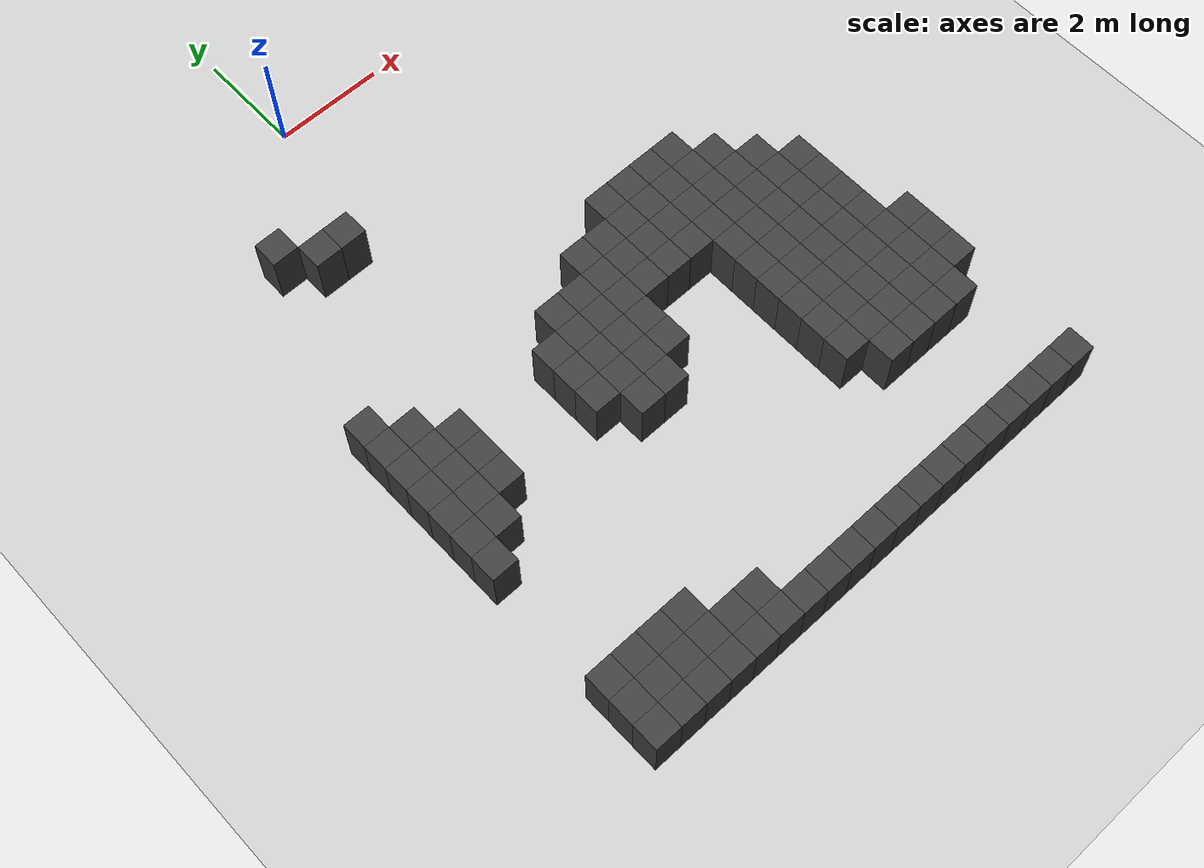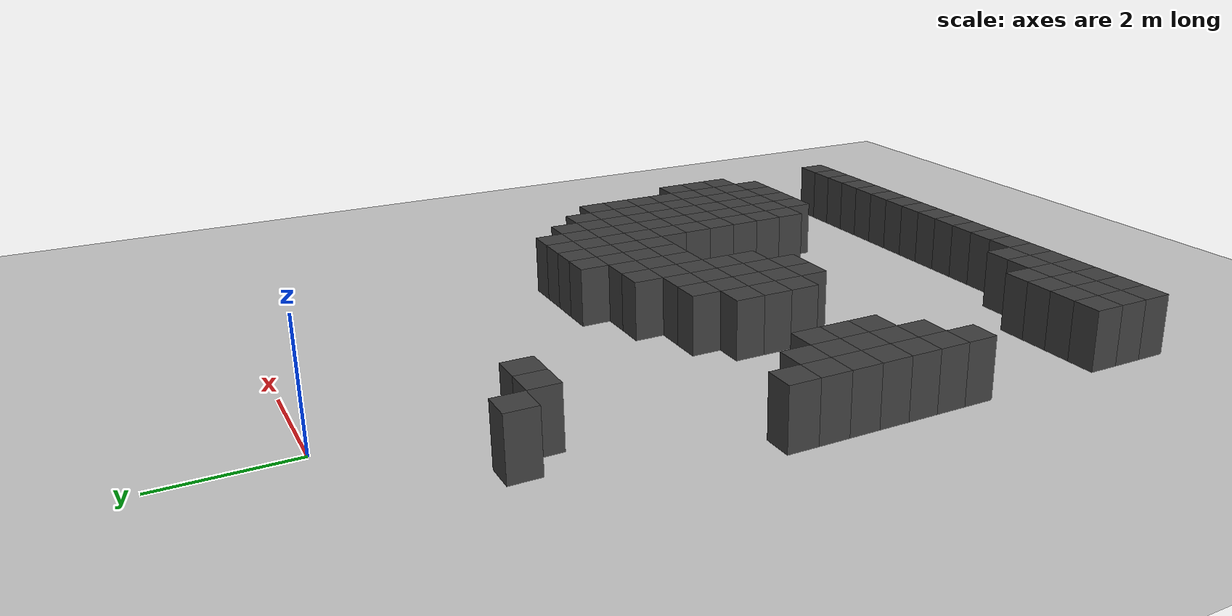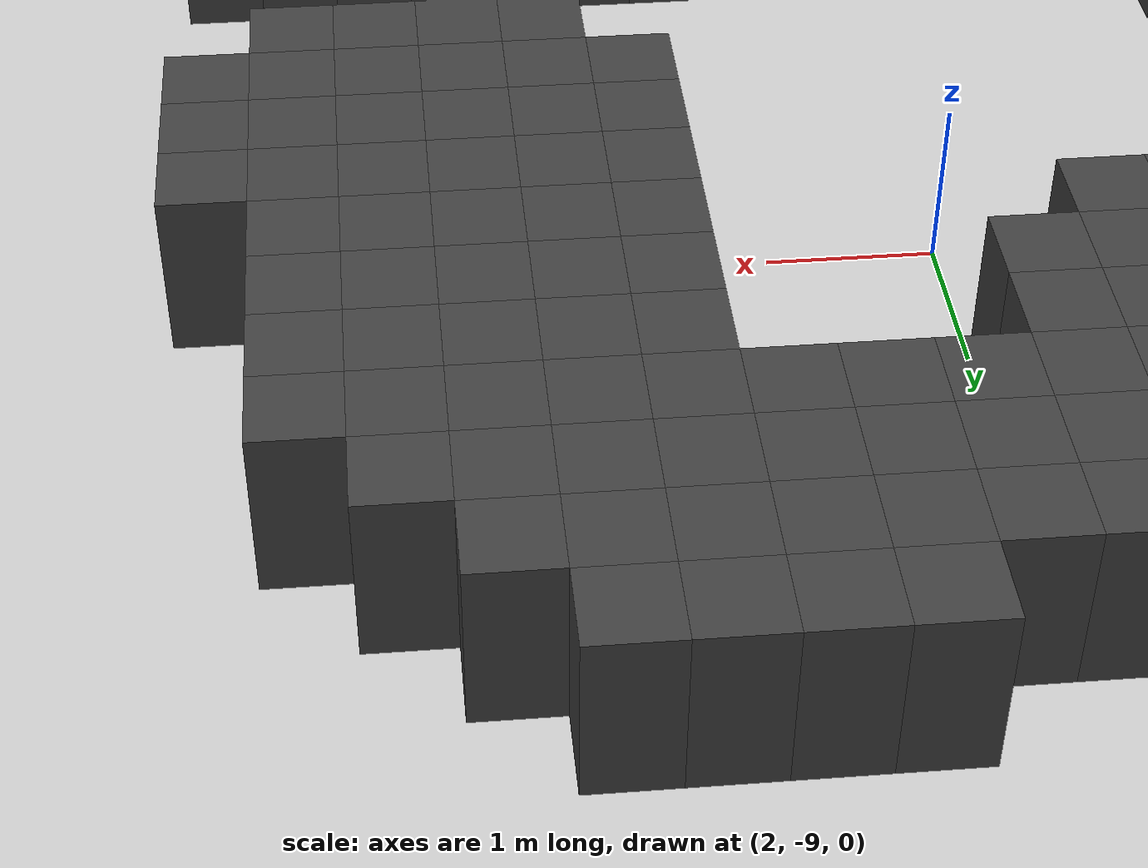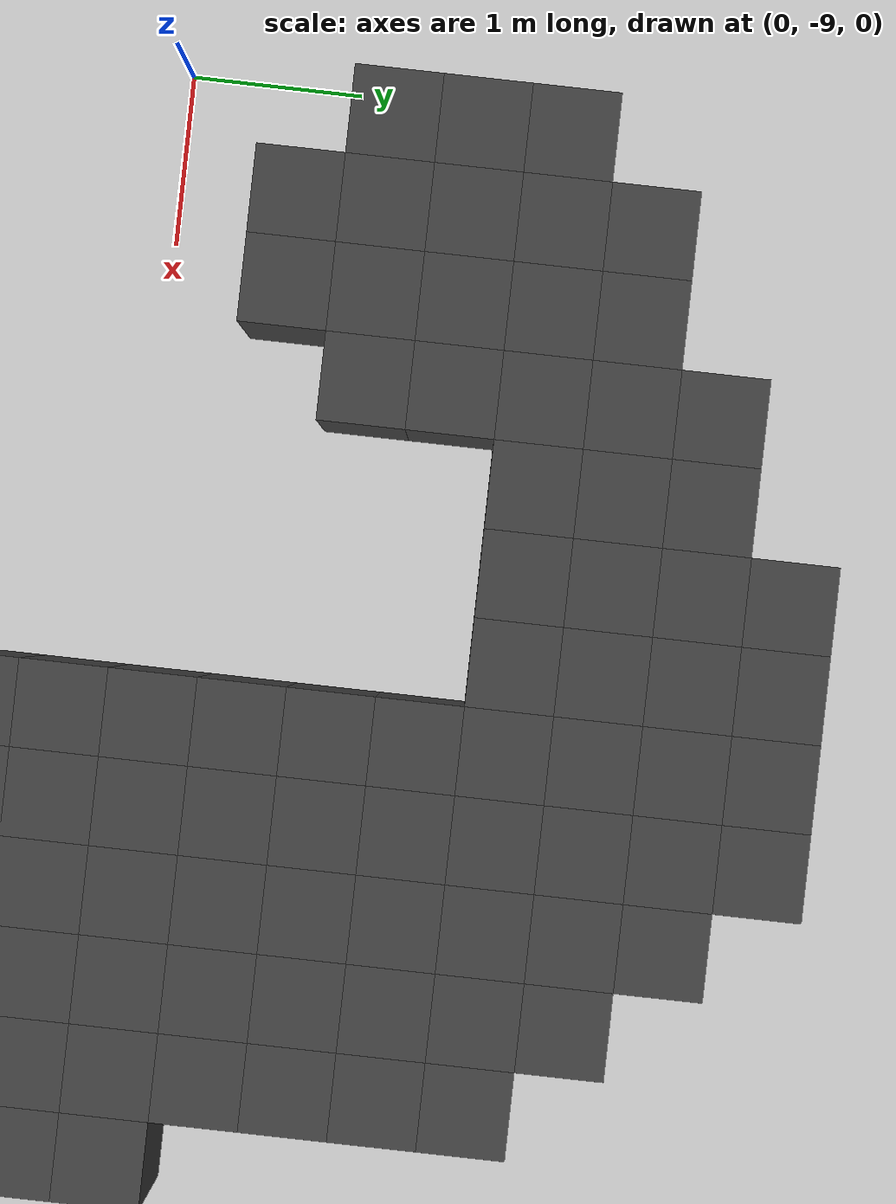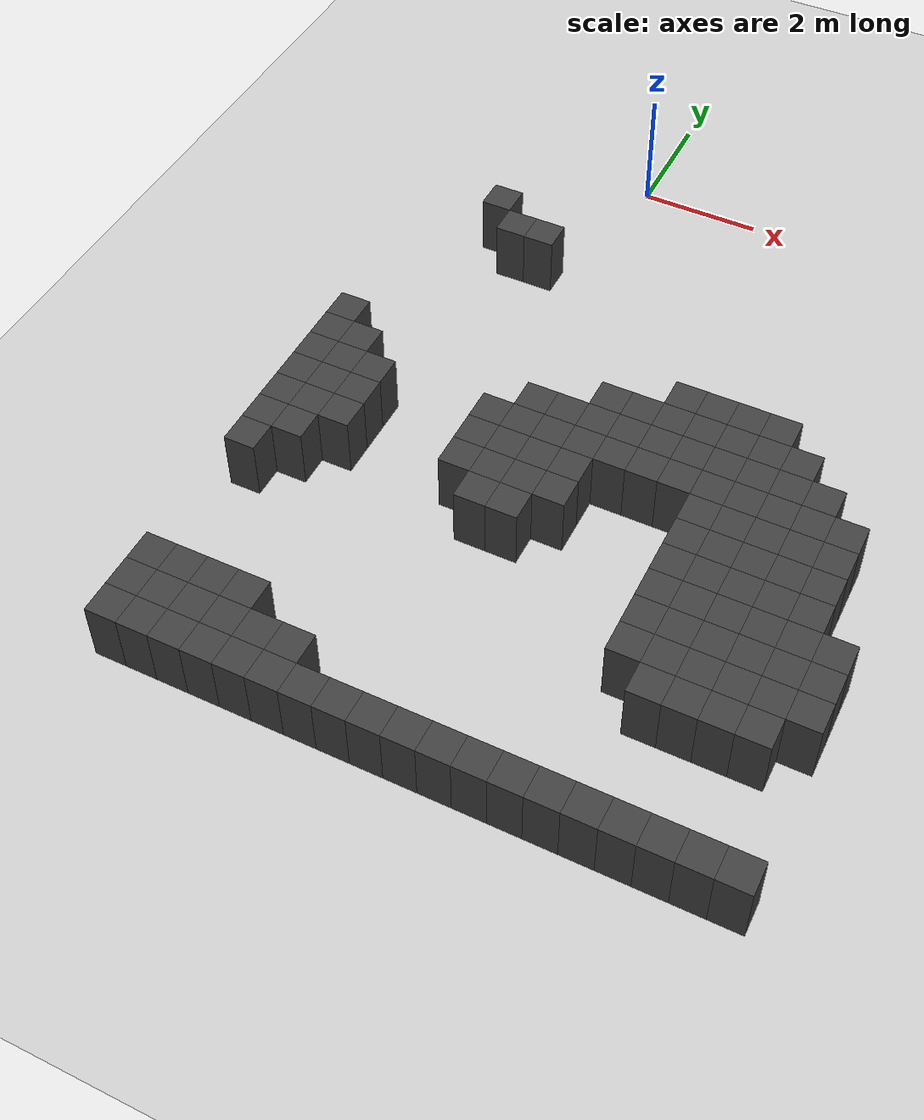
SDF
<sdf version="1.7">
 <world name="map_7981">
  <model name="ground_plane">
   <static>true</static>
   <link name="link">
    <collision name="collision">
     <geometry><plane><normal>0 0 1</normal><size>200 200</size></plane></geometry>
    </collision>
    <visual name="visual">
     <geometry><plane><normal>0 0 1</normal><size>200 200</size></plane></geometry>
     <material><ambient>0.8 0.8 0.8 1</ambient><diffuse>0.8 0.8 0.8 1</diffuse></material>
    </visual>
   </link>
  </model>
  <model name="maze_environment">
   <static>true</static>
   <link name="wall_450">
    <pose>-1.750 -2.250 0.500 0 0 0</pose>
    <collision name="col"><geometry><box><size>0.5 0.5 1.0</size></box></geometry></collision>
    <visual name="vis">
     <geometry><box><size>0.5 0.5 1.0</size></box></geometry>
     <material><ambient>0.15 0.15 0.15 1</ambient><diffuse>0.25 0.25 0.25 1</diffuse></material>
    </visual>
   </link>
   <link name="wall_471">
    <pose>-1.250 -2.750 0.500 0 0 0</pose>
    <collision name="col"><geometry><box><size>0.5 0.5 1.0</size></box></geometry></collision>
    <visual name="vis">
     <geometry><box><size>0.5 0.5 1.0</size></box></geometry>
     <material><ambient>0.15 0.15 0.15 1</ambient><diffuse>0.25 0.25 0.25 1</diffuse></material>
    </visual>
   </link>
   <link name="wall_472">
    <pose>-0.750 -2.750 0.500 0 0 0</pose>
    <collision name="col"><geometry><box><size>0.5 0.5 1.0</size></box></geometry></collision>
    <visual name="vis">
     <geometry><box><size>0.5 0.5 1.0</size></box></geometry>
     <material><ambient>0.15 0.15 0.15 1</ambient><diffuse>0.25 0.25 0.25 1</diffuse></material>
    </visual>
   </link>
   <link name="wall_554">
    <pose>2.750 -5.250 0.500 0 0 0</pose>
    <collision name="col"><geometry><box><size>0.5 0.5 1.0</size></box></geometry></collision>
    <visual name="vis">
     <geometry><box><size>0.5 0.5 1.0</size></box></geometry>
     <material><ambient>0.15 0.15 0.15 1</ambient><diffuse>0.25 0.25 0.25 1</diffuse></material>
    </visual>
   </link>
   <link name="wall_555">
    <pose>3.250 -5.250 0.500 0 0 0</pose>
    <collision name="col"><geometry><box><size>0.5 0.5 1.0</size></box></geometry></collision>
    <visual name="vis">
     <geometry><box><size>0.5 0.5 1.0</size></box></geometry>
     <material><ambient>0.15 0.15 0.15 1</ambient><diffuse>0.25 0.25 0.25 1</diffuse></material>
    </visual>
   </link>
   <link name="wall_556">
    <pose>3.750 -5.250 0.500 0 0 0</pose>
    <collision name="col"><geometry><box><size>0.5 0.5 1.0</size></box></geometry></collision>
    <visual name="vis">
     <geometry><box><size>0.5 0.5 1.0</size></box></geometry>
     <material><ambient>0.15 0.15 0.15 1</ambient><diffuse>0.25 0.25 0.25 1</diffuse></material>
    </visual>
   </link>
   <link name="wall_557">
    <pose>4.250 -5.250 0.500 0 0 0</pose>
    <collision name="col"><geometry><box><size>0.5 0.5 1.0</size></box></geometry></collision>
    <visual name="vis">
     <geometry><box><size>0.5 0.5 1.0</size></box></geometry>
     <material><ambient>0.15 0.15 0.15 1</ambient><diffuse>0.25 0.25 0.25 1</diffuse></material>
    </visual>
   </link>
   <link name="wall_567">
    <pose>-2.750 -5.750 0.500 0 0 0</pose>
    <collision name="col"><geometry><box><size>0.5 0.5 1.0</size></box></geometry></collision>
    <visual name="vis">
     <geometry><box><size>0.5 0.5 1.0</size></box></geometry>
     <material><ambient>0.15 0.15 0.15 1</ambient><diffuse>0.25 0.25 0.25 1</diffuse></material>
    </visual>
   </link>
   <link name="wall_568">
    <pose>1.750 -5.750 0.500 0 0 0</pose>
    <collision name="col"><geometry><box><size>0.5 0.5 1.0</size></box></geometry></collision>
    <visual name="vis">
     <geometry><box><size>0.5 0.5 1.0</size></box></geometry>
     <material><ambient>0.15 0.15 0.15 1</ambient><diffuse>0.25 0.25 0.25 1</diffuse></material>
    </visual>
   </link>
   <link name="wall_569">
    <pose>2.250 -5.750 0.500 0 0 0</pose>
    <collision name="col"><geometry><box><size>0.5 0.5 1.0</size></box></geometry></collision>
    <visual name="vis">
     <geometry><box><size>0.5 0.5 1.0</size></box></geometry>
     <material><ambient>0.15 0.15 0.15 1</ambient><diffuse>0.25 0.25 0.25 1</diffuse></material>
    </visual>
   </link>
   <link name="wall_570">
    <pose>2.750 -5.750 0.500 0 0 0</pose>
    <collision name="col"><geometry><box><size>0.5 0.5 1.0</size></box></geometry></collision>
    <visual name="vis">
     <geometry><box><size>0.5 0.5 1.0</size></box></geometry>
     <material><ambient>0.15 0.15 0.15 1</ambient><diffuse>0.25 0.25 0.25 1</diffuse></material>
    </visual>
   </link>
   <link name="wall_571">
    <pose>3.250 -5.750 0.500 0 0 0</pose>
    <collision name="col"><geometry><box><size>0.5 0.5 1.0</size></box></geometry></collision>
    <visual name="vis">
     <geometry><box><size>0.5 0.5 1.0</size></box></geometry>
     <material><ambient>0.15 0.15 0.15 1</ambient><diffuse>0.25 0.25 0.25 1</diffuse></material>
    </visual>
   </link>
   <link name="wall_572">
    <pose>3.750 -5.750 0.500 0 0 0</pose>
    <collision name="col"><geometry><box><size>0.5 0.5 1.0</size></box></geometry></collision>
    <visual name="vis">
     <geometry><box><size>0.5 0.5 1.0</size></box></geometry>
     <material><ambient>0.15 0.15 0.15 1</ambient><diffuse>0.25 0.25 0.25 1</diffuse></material>
    </visual>
   </link>
   <link name="wall_573">
    <pose>4.250 -5.750 0.500 0 0 0</pose>
    <collision name="col"><geometry><box><size>0.5 0.5 1.0</size></box></geometry></collision>
    <visual name="vis">
     <geometry><box><size>0.5 0.5 1.0</size></box></geometry>
     <material><ambient>0.15 0.15 0.15 1</ambient><diffuse>0.25 0.25 0.25 1</diffuse></material>
    </visual>
   </link>
   <link name="wall_574">
    <pose>4.750 -5.750 0.500 0 0 0</pose>
    <collision name="col"><geometry><box><size>0.5 0.5 1.0</size></box></geometry></collision>
    <visual name="vis">
     <geometry><box><size>0.5 0.5 1.0</size></box></geometry>
     <material><ambient>0.15 0.15 0.15 1</ambient><diffuse>0.25 0.25 0.25 1</diffuse></material>
    </visual>
   </link>
   <link name="wall_584">
    <pose>-2.750 -6.250 0.500 0 0 0</pose>
    <collision name="col"><geometry><box><size>0.5 0.5 1.0</size></box></geometry></collision>
    <visual name="vis">
     <geometry><box><size>0.5 0.5 1.0</size></box></geometry>
     <material><ambient>0.15 0.15 0.15 1</ambient><diffuse>0.25 0.25 0.25 1</diffuse></material>
    </visual>
   </link>
   <link name="wall_585">
    <pose>-2.250 -6.250 0.500 0 0 0</pose>
    <collision name="col"><geometry><box><size>0.5 0.5 1.0</size></box></geometry></collision>
    <visual name="vis">
     <geometry><box><size>0.5 0.5 1.0</size></box></geometry>
     <material><ambient>0.15 0.15 0.15 1</ambient><diffuse>0.25 0.25 0.25 1</diffuse></material>
    </visual>
   </link>
   <link name="wall_586">
    <pose>0.750 -6.250 0.500 0 0 0</pose>
    <collision name="col"><geometry><box><size>0.5 0.5 1.0</size></box></geometry></collision>
    <visual name="vis">
     <geometry><box><size>0.5 0.5 1.0</size></box></geometry>
     <material><ambient>0.15 0.15 0.15 1</ambient><diffuse>0.25 0.25 0.25 1</diffuse></material>
    </visual>
   </link>
   <link name="wall_587">
    <pose>1.250 -6.250 0.500 0 0 0</pose>
    <collision name="col"><geometry><box><size>0.5 0.5 1.0</size></box></geometry></collision>
    <visual name="vis">
     <geometry><box><size>0.5 0.5 1.0</size></box></geometry>
     <material><ambient>0.15 0.15 0.15 1</ambient><diffuse>0.25 0.25 0.25 1</diffuse></material>
    </visual>
   </link>
   <link name="wall_588">
    <pose>1.750 -6.250 0.500 0 0 0</pose>
    <collision name="col"><geometry><box><size>0.5 0.5 1.0</size></box></geometry></collision>
    <visual name="vis">
     <geometry><box><size>0.5 0.5 1.0</size></box></geometry>
     <material><ambient>0.15 0.15 0.15 1</ambient><diffuse>0.25 0.25 0.25 1</diffuse></material>
    </visual>
   </link>
   <link name="wall_589">
    <pose>2.250 -6.250 0.500 0 0 0</pose>
    <collision name="col"><geometry><box><size>0.5 0.5 1.0</size></box></geometry></collision>
    <visual name="vis">
     <geometry><box><size>0.5 0.5 1.0</size></box></geometry>
     <material><ambient>0.15 0.15 0.15 1</ambient><diffuse>0.25 0.25 0.25 1</diffuse></material>
    </visual>
   </link>
   <link name="wall_590">
    <pose>2.750 -6.250 0.500 0 0 0</pose>
    <collision name="col"><geometry><box><size>0.5 0.5 1.0</size></box></geometry></collision>
    <visual name="vis">
     <geometry><box><size>0.5 0.5 1.0</size></box></geometry>
     <material><ambient>0.15 0.15 0.15 1</ambient><diffuse>0.25 0.25 0.25 1</diffuse></material>
    </visual>
   </link>
   <link name="wall_591">
    <pose>3.250 -6.250 0.500 0 0 0</pose>
    <collision name="col"><geometry><box><size>0.5 0.5 1.0</size></box></geometry></collision>
    <visual name="vis">
     <geometry><box><size>0.5 0.5 1.0</size></box></geometry>
     <material><ambient>0.15 0.15 0.15 1</ambient><diffuse>0.25 0.25 0.25 1</diffuse></material>
    </visual>
   </link>
   <link name="wall_592">
    <pose>3.750 -6.250 0.500 0 0 0</pose>
    <collision name="col"><geometry><box><size>0.5 0.5 1.0</size></box></geometry></collision>
    <visual name="vis">
     <geometry><box><size>0.5 0.5 1.0</size></box></geometry>
     <material><ambient>0.15 0.15 0.15 1</ambient><diffuse>0.25 0.25 0.25 1</diffuse></material>
    </visual>
   </link>
   <link name="wall_593">
    <pose>4.250 -6.250 0.500 0 0 0</pose>
    <collision name="col"><geometry><box><size>0.5 0.5 1.0</size></box></geometry></collision>
    <visual name="vis">
     <geometry><box><size>0.5 0.5 1.0</size></box></geometry>
     <material><ambient>0.15 0.15 0.15 1</ambient><diffuse>0.25 0.25 0.25 1</diffuse></material>
    </visual>
   </link>
   <link name="wall_594">
    <pose>4.750 -6.250 0.500 0 0 0</pose>
    <collision name="col"><geometry><box><size>0.5 0.5 1.0</size></box></geometry></collision>
    <visual name="vis">
     <geometry><box><size>0.5 0.5 1.0</size></box></geometry>
     <material><ambient>0.15 0.15 0.15 1</ambient><diffuse>0.25 0.25 0.25 1</diffuse></material>
    </visual>
   </link>
   <link name="wall_595">
    <pose>5.250 -6.250 0.500 0 0 0</pose>
    <collision name="col"><geometry><box><size>0.5 0.5 1.0</size></box></geometry></collision>
    <visual name="vis">
     <geometry><box><size>0.5 0.5 1.0</size></box></geometry>
     <material><ambient>0.15 0.15 0.15 1</ambient><diffuse>0.25 0.25 0.25 1</diffuse></material>
    </visual>
   </link>
   <link name="wall_606">
    <pose>-2.750 -6.750 0.500 0 0 0</pose>
    <collision name="col"><geometry><box><size>0.5 0.5 1.0</size></box></geometry></collision>
    <visual name="vis">
     <geometry><box><size>0.5 0.5 1.0</size></box></geometry>
     <material><ambient>0.15 0.15 0.15 1</ambient><diffuse>0.25 0.25 0.25 1</diffuse></material>
    </visual>
   </link>
   <link name="wall_607">
    <pose>-2.250 -6.750 0.500 0 0 0</pose>
    <collision name="col"><geometry><box><size>0.5 0.5 1.0</size></box></geometry></collision>
    <visual name="vis">
     <geometry><box><size>0.5 0.5 1.0</size></box></geometry>
     <material><ambient>0.15 0.15 0.15 1</ambient><diffuse>0.25 0.25 0.25 1</diffuse></material>
    </visual>
   </link>
   <link name="wall_608">
    <pose>-1.750 -6.750 0.500 0 0 0</pose>
    <collision name="col"><geometry><box><size>0.5 0.5 1.0</size></box></geometry></collision>
    <visual name="vis">
     <geometry><box><size>0.5 0.5 1.0</size></box></geometry>
     <material><ambient>0.15 0.15 0.15 1</ambient><diffuse>0.25 0.25 0.25 1</diffuse></material>
    </visual>
   </link>
   <link name="wall_609">
    <pose>0.250 -6.750 0.500 0 0 0</pose>
    <collision name="col"><geometry><box><size>0.5 0.5 1.0</size></box></geometry></collision>
    <visual name="vis">
     <geometry><box><size>0.5 0.5 1.0</size></box></geometry>
     <material><ambient>0.15 0.15 0.15 1</ambient><diffuse>0.25 0.25 0.25 1</diffuse></material>
    </visual>
   </link>
   <link name="wall_610">
    <pose>0.750 -6.750 0.500 0 0 0</pose>
    <collision name="col"><geometry><box><size>0.5 0.5 1.0</size></box></geometry></collision>
    <visual name="vis">
     <geometry><box><size>0.5 0.5 1.0</size></box></geometry>
     <material><ambient>0.15 0.15 0.15 1</ambient><diffuse>0.25 0.25 0.25 1</diffuse></material>
    </visual>
   </link>
   <link name="wall_611">
    <pose>1.250 -6.750 0.500 0 0 0</pose>
    <collision name="col"><geometry><box><size>0.5 0.5 1.0</size></box></geometry></collision>
    <visual name="vis">
     <geometry><box><size>0.5 0.5 1.0</size></box></geometry>
     <material><ambient>0.15 0.15 0.15 1</ambient><diffuse>0.25 0.25 0.25 1</diffuse></material>
    </visual>
   </link>
   <link name="wall_612">
    <pose>1.750 -6.750 0.500 0 0 0</pose>
    <collision name="col"><geometry><box><size>0.5 0.5 1.0</size></box></geometry></collision>
    <visual name="vis">
     <geometry><box><size>0.5 0.5 1.0</size></box></geometry>
     <material><ambient>0.15 0.15 0.15 1</ambient><diffuse>0.25 0.25 0.25 1</diffuse></material>
    </visual>
   </link>
   <link name="wall_613">
    <pose>2.250 -6.750 0.500 0 0 0</pose>
    <collision name="col"><geometry><box><size>0.5 0.5 1.0</size></box></geometry></collision>
    <visual name="vis">
     <geometry><box><size>0.5 0.5 1.0</size></box></geometry>
     <material><ambient>0.15 0.15 0.15 1</ambient><diffuse>0.25 0.25 0.25 1</diffuse></material>
    </visual>
   </link>
   <link name="wall_614">
    <pose>2.750 -6.750 0.500 0 0 0</pose>
    <collision name="col"><geometry><box><size>0.5 0.5 1.0</size></box></geometry></collision>
    <visual name="vis">
     <geometry><box><size>0.5 0.5 1.0</size></box></geometry>
     <material><ambient>0.15 0.15 0.15 1</ambient><diffuse>0.25 0.25 0.25 1</diffuse></material>
    </visual>
   </link>
   <link name="wall_615">
    <pose>3.250 -6.750 0.500 0 0 0</pose>
    <collision name="col"><geometry><box><size>0.5 0.5 1.0</size></box></geometry></collision>
    <visual name="vis">
     <geometry><box><size>0.5 0.5 1.0</size></box></geometry>
     <material><ambient>0.15 0.15 0.15 1</ambient><diffuse>0.25 0.25 0.25 1</diffuse></material>
    </visual>
   </link>
   <link name="wall_616">
    <pose>3.750 -6.750 0.500 0 0 0</pose>
    <collision name="col"><geometry><box><size>0.5 0.5 1.0</size></box></geometry></collision>
    <visual name="vis">
     <geometry><box><size>0.5 0.5 1.0</size></box></geometry>
     <material><ambient>0.15 0.15 0.15 1</ambient><diffuse>0.25 0.25 0.25 1</diffuse></material>
    </visual>
   </link>
   <link name="wall_617">
    <pose>4.250 -6.750 0.500 0 0 0</pose>
    <collision name="col"><geometry><box><size>0.5 0.5 1.0</size></box></geometry></collision>
    <visual name="vis">
     <geometry><box><size>0.5 0.5 1.0</size></box></geometry>
     <material><ambient>0.15 0.15 0.15 1</ambient><diffuse>0.25 0.25 0.25 1</diffuse></material>
    </visual>
   </link>
   <link name="wall_618">
    <pose>4.750 -6.750 0.500 0 0 0</pose>
    <collision name="col"><geometry><box><size>0.5 0.5 1.0</size></box></geometry></collision>
    <visual name="vis">
     <geometry><box><size>0.5 0.5 1.0</size></box></geometry>
     <material><ambient>0.15 0.15 0.15 1</ambient><diffuse>0.25 0.25 0.25 1</diffuse></material>
    </visual>
   </link>
   <link name="wall_619">
    <pose>5.250 -6.750 0.500 0 0 0</pose>
    <collision name="col"><geometry><box><size>0.5 0.5 1.0</size></box></geometry></collision>
    <visual name="vis">
     <geometry><box><size>0.5 0.5 1.0</size></box></geometry>
     <material><ambient>0.15 0.15 0.15 1</ambient><diffuse>0.25 0.25 0.25 1</diffuse></material>
    </visual>
   </link>
   <link name="wall_620">
    <pose>5.750 -6.750 0.500 0 0 0</pose>
    <collision name="col"><geometry><box><size>0.5 0.5 1.0</size></box></geometry></collision>
    <visual name="vis">
     <geometry><box><size>0.5 0.5 1.0</size></box></geometry>
     <material><ambient>0.15 0.15 0.15 1</ambient><diffuse>0.25 0.25 0.25 1</diffuse></material>
    </visual>
   </link>
   <link name="wall_635">
    <pose>-2.750 -7.250 0.500 0 0 0</pose>
    <collision name="col"><geometry><box><size>0.5 0.5 1.0</size></box></geometry></collision>
    <visual name="vis">
     <geometry><box><size>0.5 0.5 1.0</size></box></geometry>
     <material><ambient>0.15 0.15 0.15 1</ambient><diffuse>0.25 0.25 0.25 1</diffuse></material>
    </visual>
   </link>
   <link name="wall_636">
    <pose>-2.250 -7.250 0.500 0 0 0</pose>
    <collision name="col"><geometry><box><size>0.5 0.5 1.0</size></box></geometry></collision>
    <visual name="vis">
     <geometry><box><size>0.5 0.5 1.0</size></box></geometry>
     <material><ambient>0.15 0.15 0.15 1</ambient><diffuse>0.25 0.25 0.25 1</diffuse></material>
    </visual>
   </link>
   <link name="wall_637">
    <pose>-1.750 -7.250 0.500 0 0 0</pose>
    <collision name="col"><geometry><box><size>0.5 0.5 1.0</size></box></geometry></collision>
    <visual name="vis">
     <geometry><box><size>0.5 0.5 1.0</size></box></geometry>
     <material><ambient>0.15 0.15 0.15 1</ambient><diffuse>0.25 0.25 0.25 1</diffuse></material>
    </visual>
   </link>
   <link name="wall_638">
    <pose>0.250 -7.250 0.500 0 0 0</pose>
    <collision name="col"><geometry><box><size>0.5 0.5 1.0</size></box></geometry></collision>
    <visual name="vis">
     <geometry><box><size>0.5 0.5 1.0</size></box></geometry>
     <material><ambient>0.15 0.15 0.15 1</ambient><diffuse>0.25 0.25 0.25 1</diffuse></material>
    </visual>
   </link>
   <link name="wall_639">
    <pose>0.750 -7.250 0.500 0 0 0</pose>
    <collision name="col"><geometry><box><size>0.5 0.5 1.0</size></box></geometry></collision>
    <visual name="vis">
     <geometry><box><size>0.5 0.5 1.0</size></box></geometry>
     <material><ambient>0.15 0.15 0.15 1</ambient><diffuse>0.25 0.25 0.25 1</diffuse></material>
    </visual>
   </link>
   <link name="wall_640">
    <pose>1.250 -7.250 0.500 0 0 0</pose>
    <collision name="col"><geometry><box><size>0.5 0.5 1.0</size></box></geometry></collision>
    <visual name="vis">
     <geometry><box><size>0.5 0.5 1.0</size></box></geometry>
     <material><ambient>0.15 0.15 0.15 1</ambient><diffuse>0.25 0.25 0.25 1</diffuse></material>
    </visual>
   </link>
   <link name="wall_641">
    <pose>1.750 -7.250 0.500 0 0 0</pose>
    <collision name="col"><geometry><box><size>0.5 0.5 1.0</size></box></geometry></collision>
    <visual name="vis">
     <geometry><box><size>0.5 0.5 1.0</size></box></geometry>
     <material><ambient>0.15 0.15 0.15 1</ambient><diffuse>0.25 0.25 0.25 1</diffuse></material>
    </visual>
   </link>
   <link name="wall_642">
    <pose>3.750 -7.250 0.500 0 0 0</pose>
    <collision name="col"><geometry><box><size>0.5 0.5 1.0</size></box></geometry></collision>
    <visual name="vis">
     <geometry><box><size>0.5 0.5 1.0</size></box></geometry>
     <material><ambient>0.15 0.15 0.15 1</ambient><diffuse>0.25 0.25 0.25 1</diffuse></material>
    </visual>
   </link>
   <link name="wall_643">
    <pose>4.250 -7.250 0.500 0 0 0</pose>
    <collision name="col"><geometry><box><size>0.5 0.5 1.0</size></box></geometry></collision>
    <visual name="vis">
     <geometry><box><size>0.5 0.5 1.0</size></box></geometry>
     <material><ambient>0.15 0.15 0.15 1</ambient><diffuse>0.25 0.25 0.25 1</diffuse></material>
    </visual>
   </link>
   <link name="wall_644">
    <pose>4.750 -7.250 0.500 0 0 0</pose>
    <collision name="col"><geometry><box><size>0.5 0.5 1.0</size></box></geometry></collision>
    <visual name="vis">
     <geometry><box><size>0.5 0.5 1.0</size></box></geometry>
     <material><ambient>0.15 0.15 0.15 1</ambient><diffuse>0.25 0.25 0.25 1</diffuse></material>
    </visual>
   </link>
   <link name="wall_645">
    <pose>5.250 -7.250 0.500 0 0 0</pose>
    <collision name="col"><geometry><box><size>0.5 0.5 1.0</size></box></geometry></collision>
    <visual name="vis">
     <geometry><box><size>0.5 0.5 1.0</size></box></geometry>
     <material><ambient>0.15 0.15 0.15 1</ambient><diffuse>0.25 0.25 0.25 1</diffuse></material>
    </visual>
   </link>
   <link name="wall_646">
    <pose>5.750 -7.250 0.500 0 0 0</pose>
    <collision name="col"><geometry><box><size>0.5 0.5 1.0</size></box></geometry></collision>
    <visual name="vis">
     <geometry><box><size>0.5 0.5 1.0</size></box></geometry>
     <material><ambient>0.15 0.15 0.15 1</ambient><diffuse>0.25 0.25 0.25 1</diffuse></material>
    </visual>
   </link>
   <link name="wall_666">
    <pose>-2.750 -7.750 0.500 0 0 0</pose>
    <collision name="col"><geometry><box><size>0.5 0.5 1.0</size></box></geometry></collision>
    <visual name="vis">
     <geometry><box><size>0.5 0.5 1.0</size></box></geometry>
     <material><ambient>0.15 0.15 0.15 1</ambient><diffuse>0.25 0.25 0.25 1</diffuse></material>
    </visual>
   </link>
   <link name="wall_667">
    <pose>-2.250 -7.750 0.500 0 0 0</pose>
    <collision name="col"><geometry><box><size>0.5 0.5 1.0</size></box></geometry></collision>
    <visual name="vis">
     <geometry><box><size>0.5 0.5 1.0</size></box></geometry>
     <material><ambient>0.15 0.15 0.15 1</ambient><diffuse>0.25 0.25 0.25 1</diffuse></material>
    </visual>
   </link>
   <link name="wall_668">
    <pose>-1.750 -7.750 0.500 0 0 0</pose>
    <collision name="col"><geometry><box><size>0.5 0.5 1.0</size></box></geometry></collision>
    <visual name="vis">
     <geometry><box><size>0.5 0.5 1.0</size></box></geometry>
     <material><ambient>0.15 0.15 0.15 1</ambient><diffuse>0.25 0.25 0.25 1</diffuse></material>
    </visual>
   </link>
   <link name="wall_669">
    <pose>0.250 -7.750 0.500 0 0 0</pose>
    <collision name="col"><geometry><box><size>0.5 0.5 1.0</size></box></geometry></collision>
    <visual name="vis">
     <geometry><box><size>0.5 0.5 1.0</size></box></geometry>
     <material><ambient>0.15 0.15 0.15 1</ambient><diffuse>0.25 0.25 0.25 1</diffuse></material>
    </visual>
   </link>
   <link name="wall_670">
    <pose>0.750 -7.750 0.500 0 0 0</pose>
    <collision name="col"><geometry><box><size>0.5 0.5 1.0</size></box></geometry></collision>
    <visual name="vis">
     <geometry><box><size>0.5 0.5 1.0</size></box></geometry>
     <material><ambient>0.15 0.15 0.15 1</ambient><diffuse>0.25 0.25 0.25 1</diffuse></material>
    </visual>
   </link>
   <link name="wall_671">
    <pose>1.250 -7.750 0.500 0 0 0</pose>
    <collision name="col"><geometry><box><size>0.5 0.5 1.0</size></box></geometry></collision>
    <visual name="vis">
     <geometry><box><size>0.5 0.5 1.0</size></box></geometry>
     <material><ambient>0.15 0.15 0.15 1</ambient><diffuse>0.25 0.25 0.25 1</diffuse></material>
    </visual>
   </link>
   <link name="wall_672">
    <pose>1.750 -7.750 0.500 0 0 0</pose>
    <collision name="col"><geometry><box><size>0.5 0.5 1.0</size></box></geometry></collision>
    <visual name="vis">
     <geometry><box><size>0.5 0.5 1.0</size></box></geometry>
     <material><ambient>0.15 0.15 0.15 1</ambient><diffuse>0.25 0.25 0.25 1</diffuse></material>
    </visual>
   </link>
   <link name="wall_673">
    <pose>3.750 -7.750 0.500 0 0 0</pose>
    <collision name="col"><geometry><box><size>0.5 0.5 1.0</size></box></geometry></collision>
    <visual name="vis">
     <geometry><box><size>0.5 0.5 1.0</size></box></geometry>
     <material><ambient>0.15 0.15 0.15 1</ambient><diffuse>0.25 0.25 0.25 1</diffuse></material>
    </visual>
   </link>
   <link name="wall_674">
    <pose>4.250 -7.750 0.500 0 0 0</pose>
    <collision name="col"><geometry><box><size>0.5 0.5 1.0</size></box></geometry></collision>
    <visual name="vis">
     <geometry><box><size>0.5 0.5 1.0</size></box></geometry>
     <material><ambient>0.15 0.15 0.15 1</ambient><diffuse>0.25 0.25 0.25 1</diffuse></material>
    </visual>
   </link>
   <link name="wall_675">
    <pose>4.750 -7.750 0.500 0 0 0</pose>
    <collision name="col"><geometry><box><size>0.5 0.5 1.0</size></box></geometry></collision>
    <visual name="vis">
     <geometry><box><size>0.5 0.5 1.0</size></box></geometry>
     <material><ambient>0.15 0.15 0.15 1</ambient><diffuse>0.25 0.25 0.25 1</diffuse></material>
    </visual>
   </link>
   <link name="wall_676">
    <pose>5.250 -7.750 0.500 0 0 0</pose>
    <collision name="col"><geometry><box><size>0.5 0.5 1.0</size></box></geometry></collision>
    <visual name="vis">
     <geometry><box><size>0.5 0.5 1.0</size></box></geometry>
     <material><ambient>0.15 0.15 0.15 1</ambient><diffuse>0.25 0.25 0.25 1</diffuse></material>
    </visual>
   </link>
   <link name="wall_677">
    <pose>5.750 -7.750 0.500 0 0 0</pose>
    <collision name="col"><geometry><box><size>0.5 0.5 1.0</size></box></geometry></collision>
    <visual name="vis">
     <geometry><box><size>0.5 0.5 1.0</size></box></geometry>
     <material><ambient>0.15 0.15 0.15 1</ambient><diffuse>0.25 0.25 0.25 1</diffuse></material>
    </visual>
   </link>
   <link name="wall_696">
    <pose>-2.750 -8.250 0.500 0 0 0</pose>
    <collision name="col"><geometry><box><size>0.5 0.5 1.0</size></box></geometry></collision>
    <visual name="vis">
     <geometry><box><size>0.5 0.5 1.0</size></box></geometry>
     <material><ambient>0.15 0.15 0.15 1</ambient><diffuse>0.25 0.25 0.25 1</diffuse></material>
    </visual>
   </link>
   <link name="wall_697">
    <pose>-2.250 -8.250 0.500 0 0 0</pose>
    <collision name="col"><geometry><box><size>0.5 0.5 1.0</size></box></geometry></collision>
    <visual name="vis">
     <geometry><box><size>0.5 0.5 1.0</size></box></geometry>
     <material><ambient>0.15 0.15 0.15 1</ambient><diffuse>0.25 0.25 0.25 1</diffuse></material>
    </visual>
   </link>
   <link name="wall_698">
    <pose>0.750 -8.250 0.500 0 0 0</pose>
    <collision name="col"><geometry><box><size>0.5 0.5 1.0</size></box></geometry></collision>
    <visual name="vis">
     <geometry><box><size>0.5 0.5 1.0</size></box></geometry>
     <material><ambient>0.15 0.15 0.15 1</ambient><diffuse>0.25 0.25 0.25 1</diffuse></material>
    </visual>
   </link>
   <link name="wall_699">
    <pose>1.250 -8.250 0.500 0 0 0</pose>
    <collision name="col"><geometry><box><size>0.5 0.5 1.0</size></box></geometry></collision>
    <visual name="vis">
     <geometry><box><size>0.5 0.5 1.0</size></box></geometry>
     <material><ambient>0.15 0.15 0.15 1</ambient><diffuse>0.25 0.25 0.25 1</diffuse></material>
    </visual>
   </link>
   <link name="wall_700">
    <pose>3.750 -8.250 0.500 0 0 0</pose>
    <collision name="col"><geometry><box><size>0.5 0.5 1.0</size></box></geometry></collision>
    <visual name="vis">
     <geometry><box><size>0.5 0.5 1.0</size></box></geometry>
     <material><ambient>0.15 0.15 0.15 1</ambient><diffuse>0.25 0.25 0.25 1</diffuse></material>
    </visual>
   </link>
   <link name="wall_701">
    <pose>4.250 -8.250 0.500 0 0 0</pose>
    <collision name="col"><geometry><box><size>0.5 0.5 1.0</size></box></geometry></collision>
    <visual name="vis">
     <geometry><box><size>0.5 0.5 1.0</size></box></geometry>
     <material><ambient>0.15 0.15 0.15 1</ambient><diffuse>0.25 0.25 0.25 1</diffuse></material>
    </visual>
   </link>
   <link name="wall_702">
    <pose>4.750 -8.250 0.500 0 0 0</pose>
    <collision name="col"><geometry><box><size>0.5 0.5 1.0</size></box></geometry></collision>
    <visual name="vis">
     <geometry><box><size>0.5 0.5 1.0</size></box></geometry>
     <material><ambient>0.15 0.15 0.15 1</ambient><diffuse>0.25 0.25 0.25 1</diffuse></material>
    </visual>
   </link>
   <link name="wall_703">
    <pose>5.250 -8.250 0.500 0 0 0</pose>
    <collision name="col"><geometry><box><size>0.5 0.5 1.0</size></box></geometry></collision>
    <visual name="vis">
     <geometry><box><size>0.5 0.5 1.0</size></box></geometry>
     <material><ambient>0.15 0.15 0.15 1</ambient><diffuse>0.25 0.25 0.25 1</diffuse></material>
    </visual>
   </link>
   <link name="wall_704">
    <pose>5.750 -8.250 0.500 0 0 0</pose>
    <collision name="col"><geometry><box><size>0.5 0.5 1.0</size></box></geometry></collision>
    <visual name="vis">
     <geometry><box><size>0.5 0.5 1.0</size></box></geometry>
     <material><ambient>0.15 0.15 0.15 1</ambient><diffuse>0.25 0.25 0.25 1</diffuse></material>
    </visual>
   </link>
   <link name="wall_723">
    <pose>-2.750 -8.750 0.500 0 0 0</pose>
    <collision name="col"><geometry><box><size>0.5 0.5 1.0</size></box></geometry></collision>
    <visual name="vis">
     <geometry><box><size>0.5 0.5 1.0</size></box></geometry>
     <material><ambient>0.15 0.15 0.15 1</ambient><diffuse>0.25 0.25 0.25 1</diffuse></material>
    </visual>
   </link>
   <link name="wall_724">
    <pose>3.750 -8.750 0.500 0 0 0</pose>
    <collision name="col"><geometry><box><size>0.5 0.5 1.0</size></box></geometry></collision>
    <visual name="vis">
     <geometry><box><size>0.5 0.5 1.0</size></box></geometry>
     <material><ambient>0.15 0.15 0.15 1</ambient><diffuse>0.25 0.25 0.25 1</diffuse></material>
    </visual>
   </link>
   <link name="wall_725">
    <pose>4.250 -8.750 0.500 0 0 0</pose>
    <collision name="col"><geometry><box><size>0.5 0.5 1.0</size></box></geometry></collision>
    <visual name="vis">
     <geometry><box><size>0.5 0.5 1.0</size></box></geometry>
     <material><ambient>0.15 0.15 0.15 1</ambient><diffuse>0.25 0.25 0.25 1</diffuse></material>
    </visual>
   </link>
   <link name="wall_726">
    <pose>4.750 -8.750 0.500 0 0 0</pose>
    <collision name="col"><geometry><box><size>0.5 0.5 1.0</size></box></geometry></collision>
    <visual name="vis">
     <geometry><box><size>0.5 0.5 1.0</size></box></geometry>
     <material><ambient>0.15 0.15 0.15 1</ambient><diffuse>0.25 0.25 0.25 1</diffuse></material>
    </visual>
   </link>
   <link name="wall_727">
    <pose>5.250 -8.750 0.500 0 0 0</pose>
    <collision name="col"><geometry><box><size>0.5 0.5 1.0</size></box></geometry></collision>
    <visual name="vis">
     <geometry><box><size>0.5 0.5 1.0</size></box></geometry>
     <material><ambient>0.15 0.15 0.15 1</ambient><diffuse>0.25 0.25 0.25 1</diffuse></material>
    </visual>
   </link>
   <link name="wall_728">
    <pose>5.750 -8.750 0.500 0 0 0</pose>
    <collision name="col"><geometry><box><size>0.5 0.5 1.0</size></box></geometry></collision>
    <visual name="vis">
     <geometry><box><size>0.5 0.5 1.0</size></box></geometry>
     <material><ambient>0.15 0.15 0.15 1</ambient><diffuse>0.25 0.25 0.25 1</diffuse></material>
    </visual>
   </link>
   <link name="wall_729">
    <pose>6.250 -8.750 0.500 0 0 0</pose>
    <collision name="col"><geometry><box><size>0.5 0.5 1.0</size></box></geometry></collision>
    <visual name="vis">
     <geometry><box><size>0.5 0.5 1.0</size></box></geometry>
     <material><ambient>0.15 0.15 0.15 1</ambient><diffuse>0.25 0.25 0.25 1</diffuse></material>
    </visual>
   </link>
   <link name="wall_747">
    <pose>3.750 -9.250 0.500 0 0 0</pose>
    <collision name="col"><geometry><box><size>0.5 0.5 1.0</size></box></geometry></collision>
    <visual name="vis">
     <geometry><box><size>0.5 0.5 1.0</size></box></geometry>
     <material><ambient>0.15 0.15 0.15 1</ambient><diffuse>0.25 0.25 0.25 1</diffuse></material>
    </visual>
   </link>
   <link name="wall_748">
    <pose>4.250 -9.250 0.500 0 0 0</pose>
    <collision name="col"><geometry><box><size>0.5 0.5 1.0</size></box></geometry></collision>
    <visual name="vis">
     <geometry><box><size>0.5 0.5 1.0</size></box></geometry>
     <material><ambient>0.15 0.15 0.15 1</ambient><diffuse>0.25 0.25 0.25 1</diffuse></material>
    </visual>
   </link>
   <link name="wall_749">
    <pose>4.750 -9.250 0.500 0 0 0</pose>
    <collision name="col"><geometry><box><size>0.5 0.5 1.0</size></box></geometry></collision>
    <visual name="vis">
     <geometry><box><size>0.5 0.5 1.0</size></box></geometry>
     <material><ambient>0.15 0.15 0.15 1</ambient><diffuse>0.25 0.25 0.25 1</diffuse></material>
    </visual>
   </link>
   <link name="wall_750">
    <pose>5.250 -9.250 0.500 0 0 0</pose>
    <collision name="col"><geometry><box><size>0.5 0.5 1.0</size></box></geometry></collision>
    <visual name="vis">
     <geometry><box><size>0.5 0.5 1.0</size></box></geometry>
     <material><ambient>0.15 0.15 0.15 1</ambient><diffuse>0.25 0.25 0.25 1</diffuse></material>
    </visual>
   </link>
   <link name="wall_751">
    <pose>5.750 -9.250 0.500 0 0 0</pose>
    <collision name="col"><geometry><box><size>0.5 0.5 1.0</size></box></geometry></collision>
    <visual name="vis">
     <geometry><box><size>0.5 0.5 1.0</size></box></geometry>
     <material><ambient>0.15 0.15 0.15 1</ambient><diffuse>0.25 0.25 0.25 1</diffuse></material>
    </visual>
   </link>
   <link name="wall_752">
    <pose>6.250 -9.250 0.500 0 0 0</pose>
    <collision name="col"><geometry><box><size>0.5 0.5 1.0</size></box></geometry></collision>
    <visual name="vis">
     <geometry><box><size>0.5 0.5 1.0</size></box></geometry>
     <material><ambient>0.15 0.15 0.15 1</ambient><diffuse>0.25 0.25 0.25 1</diffuse></material>
    </visual>
   </link>
   <link name="wall_768">
    <pose>3.750 -9.750 0.500 0 0 0</pose>
    <collision name="col"><geometry><box><size>0.5 0.5 1.0</size></box></geometry></collision>
    <visual name="vis">
     <geometry><box><size>0.5 0.5 1.0</size></box></geometry>
     <material><ambient>0.15 0.15 0.15 1</ambient><diffuse>0.25 0.25 0.25 1</diffuse></material>
    </visual>
   </link>
   <link name="wall_769">
    <pose>4.250 -9.750 0.500 0 0 0</pose>
    <collision name="col"><geometry><box><size>0.5 0.5 1.0</size></box></geometry></collision>
    <visual name="vis">
     <geometry><box><size>0.5 0.5 1.0</size></box></geometry>
     <material><ambient>0.15 0.15 0.15 1</ambient><diffuse>0.25 0.25 0.25 1</diffuse></material>
    </visual>
   </link>
   <link name="wall_770">
    <pose>4.750 -9.750 0.500 0 0 0</pose>
    <collision name="col"><geometry><box><size>0.5 0.5 1.0</size></box></geometry></collision>
    <visual name="vis">
     <geometry><box><size>0.5 0.5 1.0</size></box></geometry>
     <material><ambient>0.15 0.15 0.15 1</ambient><diffuse>0.25 0.25 0.25 1</diffuse></material>
    </visual>
   </link>
   <link name="wall_771">
    <pose>5.250 -9.750 0.500 0 0 0</pose>
    <collision name="col"><geometry><box><size>0.5 0.5 1.0</size></box></geometry></collision>
    <visual name="vis">
     <geometry><box><size>0.5 0.5 1.0</size></box></geometry>
     <material><ambient>0.15 0.15 0.15 1</ambient><diffuse>0.25 0.25 0.25 1</diffuse></material>
    </visual>
   </link>
   <link name="wall_772">
    <pose>5.750 -9.750 0.500 0 0 0</pose>
    <collision name="col"><geometry><box><size>0.5 0.5 1.0</size></box></geometry></collision>
    <visual name="vis">
     <geometry><box><size>0.5 0.5 1.0</size></box></geometry>
     <material><ambient>0.15 0.15 0.15 1</ambient><diffuse>0.25 0.25 0.25 1</diffuse></material>
    </visual>
   </link>
   <link name="wall_773">
    <pose>6.250 -9.750 0.500 0 0 0</pose>
    <collision name="col"><geometry><box><size>0.5 0.5 1.0</size></box></geometry></collision>
    <visual name="vis">
     <geometry><box><size>0.5 0.5 1.0</size></box></geometry>
     <material><ambient>0.15 0.15 0.15 1</ambient><diffuse>0.25 0.25 0.25 1</diffuse></material>
    </visual>
   </link>
   <link name="wall_787">
    <pose>4.250 -10.250 0.500 0 0 0</pose>
    <collision name="col"><geometry><box><size>0.5 0.5 1.0</size></box></geometry></collision>
    <visual name="vis">
     <geometry><box><size>0.5 0.5 1.0</size></box></geometry>
     <material><ambient>0.15 0.15 0.15 1</ambient><diffuse>0.25 0.25 0.25 1</diffuse></material>
    </visual>
   </link>
   <link name="wall_788">
    <pose>4.750 -10.250 0.500 0 0 0</pose>
    <collision name="col"><geometry><box><size>0.5 0.5 1.0</size></box></geometry></collision>
    <visual name="vis">
     <geometry><box><size>0.5 0.5 1.0</size></box></geometry>
     <material><ambient>0.15 0.15 0.15 1</ambient><diffuse>0.25 0.25 0.25 1</diffuse></material>
    </visual>
   </link>
   <link name="wall_789">
    <pose>5.250 -10.250 0.500 0 0 0</pose>
    <collision name="col"><geometry><box><size>0.5 0.5 1.0</size></box></geometry></collision>
    <visual name="vis">
     <geometry><box><size>0.5 0.5 1.0</size></box></geometry>
     <material><ambient>0.15 0.15 0.15 1</ambient><diffuse>0.25 0.25 0.25 1</diffuse></material>
    </visual>
   </link>
   <link name="wall_790">
    <pose>5.750 -10.250 0.500 0 0 0</pose>
    <collision name="col"><geometry><box><size>0.5 0.5 1.0</size></box></geometry></collision>
    <visual name="vis">
     <geometry><box><size>0.5 0.5 1.0</size></box></geometry>
     <material><ambient>0.15 0.15 0.15 1</ambient><diffuse>0.25 0.25 0.25 1</diffuse></material>
    </visual>
   </link>
   <link name="wall_812">
    <pose>-2.750 -11.250 0.500 0 0 0</pose>
    <collision name="col"><geometry><box><size>0.5 0.5 1.0</size></box></geometry></collision>
    <visual name="vis">
     <geometry><box><size>0.5 0.5 1.0</size></box></geometry>
     <material><ambient>0.15 0.15 0.15 1</ambient><diffuse>0.25 0.25 0.25 1</diffuse></material>
    </visual>
   </link>
   <link name="wall_813">
    <pose>-2.250 -11.250 0.500 0 0 0</pose>
    <collision name="col"><geometry><box><size>0.5 0.5 1.0</size></box></geometry></collision>
    <visual name="vis">
     <geometry><box><size>0.5 0.5 1.0</size></box></geometry>
     <material><ambient>0.15 0.15 0.15 1</ambient><diffuse>0.25 0.25 0.25 1</diffuse></material>
    </visual>
   </link>
   <link name="wall_814">
    <pose>-1.750 -11.250 0.500 0 0 0</pose>
    <collision name="col"><geometry><box><size>0.5 0.5 1.0</size></box></geometry></collision>
    <visual name="vis">
     <geometry><box><size>0.5 0.5 1.0</size></box></geometry>
     <material><ambient>0.15 0.15 0.15 1</ambient><diffuse>0.25 0.25 0.25 1</diffuse></material>
    </visual>
   </link>
   <link name="wall_815">
    <pose>-1.250 -11.250 0.500 0 0 0</pose>
    <collision name="col"><geometry><box><size>0.5 0.5 1.0</size></box></geometry></collision>
    <visual name="vis">
     <geometry><box><size>0.5 0.5 1.0</size></box></geometry>
     <material><ambient>0.15 0.15 0.15 1</ambient><diffuse>0.25 0.25 0.25 1</diffuse></material>
    </visual>
   </link>
   <link name="wall_830">
    <pose>-2.750 -11.750 0.500 0 0 0</pose>
    <collision name="col"><geometry><box><size>0.5 0.5 1.0</size></box></geometry></collision>
    <visual name="vis">
     <geometry><box><size>0.5 0.5 1.0</size></box></geometry>
     <material><ambient>0.15 0.15 0.15 1</ambient><diffuse>0.25 0.25 0.25 1</diffuse></material>
    </visual>
   </link>
   <link name="wall_831">
    <pose>-2.250 -11.750 0.500 0 0 0</pose>
    <collision name="col"><geometry><box><size>0.5 0.5 1.0</size></box></geometry></collision>
    <visual name="vis">
     <geometry><box><size>0.5 0.5 1.0</size></box></geometry>
     <material><ambient>0.15 0.15 0.15 1</ambient><diffuse>0.25 0.25 0.25 1</diffuse></material>
    </visual>
   </link>
   <link name="wall_832">
    <pose>-1.750 -11.750 0.500 0 0 0</pose>
    <collision name="col"><geometry><box><size>0.5 0.5 1.0</size></box></geometry></collision>
    <visual name="vis">
     <geometry><box><size>0.5 0.5 1.0</size></box></geometry>
     <material><ambient>0.15 0.15 0.15 1</ambient><diffuse>0.25 0.25 0.25 1</diffuse></material>
    </visual>
   </link>
   <link name="wall_833">
    <pose>-1.250 -11.750 0.500 0 0 0</pose>
    <collision name="col"><geometry><box><size>0.5 0.5 1.0</size></box></geometry></collision>
    <visual name="vis">
     <geometry><box><size>0.5 0.5 1.0</size></box></geometry>
     <material><ambient>0.15 0.15 0.15 1</ambient><diffuse>0.25 0.25 0.25 1</diffuse></material>
    </visual>
   </link>
   <link name="wall_834">
    <pose>-0.750 -11.750 0.500 0 0 0</pose>
    <collision name="col"><geometry><box><size>0.5 0.5 1.0</size></box></geometry></collision>
    <visual name="vis">
     <geometry><box><size>0.5 0.5 1.0</size></box></geometry>
     <material><ambient>0.15 0.15 0.15 1</ambient><diffuse>0.25 0.25 0.25 1</diffuse></material>
    </visual>
   </link>
   <link name="wall_835">
    <pose>-0.250 -11.750 0.500 0 0 0</pose>
    <collision name="col"><geometry><box><size>0.5 0.5 1.0</size></box></geometry></collision>
    <visual name="vis">
     <geometry><box><size>0.5 0.5 1.0</size></box></geometry>
     <material><ambient>0.15 0.15 0.15 1</ambient><diffuse>0.25 0.25 0.25 1</diffuse></material>
    </visual>
   </link>
   <link name="wall_856">
    <pose>-2.750 -12.250 0.500 0 0 0</pose>
    <collision name="col"><geometry><box><size>0.5 0.5 1.0</size></box></geometry></collision>
    <visual name="vis">
     <geometry><box><size>0.5 0.5 1.0</size></box></geometry>
     <material><ambient>0.15 0.15 0.15 1</ambient><diffuse>0.25 0.25 0.25 1</diffuse></material>
    </visual>
   </link>
   <link name="wall_857">
    <pose>-2.250 -12.250 0.500 0 0 0</pose>
    <collision name="col"><geometry><box><size>0.5 0.5 1.0</size></box></geometry></collision>
    <visual name="vis">
     <geometry><box><size>0.5 0.5 1.0</size></box></geometry>
     <material><ambient>0.15 0.15 0.15 1</ambient><diffuse>0.25 0.25 0.25 1</diffuse></material>
    </visual>
   </link>
   <link name="wall_858">
    <pose>-1.750 -12.250 0.500 0 0 0</pose>
    <collision name="col"><geometry><box><size>0.5 0.5 1.0</size></box></geometry></collision>
    <visual name="vis">
     <geometry><box><size>0.5 0.5 1.0</size></box></geometry>
     <material><ambient>0.15 0.15 0.15 1</ambient><diffuse>0.25 0.25 0.25 1</diffuse></material>
    </visual>
   </link>
   <link name="wall_859">
    <pose>-1.250 -12.250 0.500 0 0 0</pose>
    <collision name="col"><geometry><box><size>0.5 0.5 1.0</size></box></geometry></collision>
    <visual name="vis">
     <geometry><box><size>0.5 0.5 1.0</size></box></geometry>
     <material><ambient>0.15 0.15 0.15 1</ambient><diffuse>0.25 0.25 0.25 1</diffuse></material>
    </visual>
   </link>
   <link name="wall_860">
    <pose>-0.750 -12.250 0.500 0 0 0</pose>
    <collision name="col"><geometry><box><size>0.5 0.5 1.0</size></box></geometry></collision>
    <visual name="vis">
     <geometry><box><size>0.5 0.5 1.0</size></box></geometry>
     <material><ambient>0.15 0.15 0.15 1</ambient><diffuse>0.25 0.25 0.25 1</diffuse></material>
    </visual>
   </link>
   <link name="wall_861">
    <pose>-0.250 -12.250 0.500 0 0 0</pose>
    <collision name="col"><geometry><box><size>0.5 0.5 1.0</size></box></geometry></collision>
    <visual name="vis">
     <geometry><box><size>0.5 0.5 1.0</size></box></geometry>
     <material><ambient>0.15 0.15 0.15 1</ambient><diffuse>0.25 0.25 0.25 1</diffuse></material>
    </visual>
   </link>
   <link name="wall_862">
    <pose>0.250 -12.250 0.500 0 0 0</pose>
    <collision name="col"><geometry><box><size>0.5 0.5 1.0</size></box></geometry></collision>
    <visual name="vis">
     <geometry><box><size>0.5 0.5 1.0</size></box></geometry>
     <material><ambient>0.15 0.15 0.15 1</ambient><diffuse>0.25 0.25 0.25 1</diffuse></material>
    </visual>
   </link>
   <link name="wall_863">
    <pose>0.750 -12.250 0.500 0 0 0</pose>
    <collision name="col"><geometry><box><size>0.5 0.5 1.0</size></box></geometry></collision>
    <visual name="vis">
     <geometry><box><size>0.5 0.5 1.0</size></box></geometry>
     <material><ambient>0.15 0.15 0.15 1</ambient><diffuse>0.25 0.25 0.25 1</diffuse></material>
    </visual>
   </link>
   <link name="wall_864">
    <pose>1.250 -12.250 0.500 0 0 0</pose>
    <collision name="col"><geometry><box><size>0.5 0.5 1.0</size></box></geometry></collision>
    <visual name="vis">
     <geometry><box><size>0.5 0.5 1.0</size></box></geometry>
     <material><ambient>0.15 0.15 0.15 1</ambient><diffuse>0.25 0.25 0.25 1</diffuse></material>
    </visual>
   </link>
   <link name="wall_865">
    <pose>1.750 -12.250 0.500 0 0 0</pose>
    <collision name="col"><geometry><box><size>0.5 0.5 1.0</size></box></geometry></collision>
    <visual name="vis">
     <geometry><box><size>0.5 0.5 1.0</size></box></geometry>
     <material><ambient>0.15 0.15 0.15 1</ambient><diffuse>0.25 0.25 0.25 1</diffuse></material>
    </visual>
   </link>
   <link name="wall_866">
    <pose>2.250 -12.250 0.500 0 0 0</pose>
    <collision name="col"><geometry><box><size>0.5 0.5 1.0</size></box></geometry></collision>
    <visual name="vis">
     <geometry><box><size>0.5 0.5 1.0</size></box></geometry>
     <material><ambient>0.15 0.15 0.15 1</ambient><diffuse>0.25 0.25 0.25 1</diffuse></material>
    </visual>
   </link>
   <link name="wall_867">
    <pose>2.750 -12.250 0.500 0 0 0</pose>
    <collision name="col"><geometry><box><size>0.5 0.5 1.0</size></box></geometry></collision>
    <visual name="vis">
     <geometry><box><size>0.5 0.5 1.0</size></box></geometry>
     <material><ambient>0.15 0.15 0.15 1</ambient><diffuse>0.25 0.25 0.25 1</diffuse></material>
    </visual>
   </link>
   <link name="wall_868">
    <pose>3.250 -12.250 0.500 0 0 0</pose>
    <collision name="col"><geometry><box><size>0.5 0.5 1.0</size></box></geometry></collision>
    <visual name="vis">
     <geometry><box><size>0.5 0.5 1.0</size></box></geometry>
     <material><ambient>0.15 0.15 0.15 1</ambient><diffuse>0.25 0.25 0.25 1</diffuse></material>
    </visual>
   </link>
   <link name="wall_869">
    <pose>3.750 -12.250 0.500 0 0 0</pose>
    <collision name="col"><geometry><box><size>0.5 0.5 1.0</size></box></geometry></collision>
    <visual name="vis">
     <geometry><box><size>0.5 0.5 1.0</size></box></geometry>
     <material><ambient>0.15 0.15 0.15 1</ambient><diffuse>0.25 0.25 0.25 1</diffuse></material>
    </visual>
   </link>
   <link name="wall_870">
    <pose>4.250 -12.250 0.500 0 0 0</pose>
    <collision name="col"><geometry><box><size>0.5 0.5 1.0</size></box></geometry></collision>
    <visual name="vis">
     <geometry><box><size>0.5 0.5 1.0</size></box></geometry>
     <material><ambient>0.15 0.15 0.15 1</ambient><diffuse>0.25 0.25 0.25 1</diffuse></material>
    </visual>
   </link>
   <link name="wall_871">
    <pose>4.750 -12.250 0.500 0 0 0</pose>
    <collision name="col"><geometry><box><size>0.5 0.5 1.0</size></box></geometry></collision>
    <visual name="vis">
     <geometry><box><size>0.5 0.5 1.0</size></box></geometry>
     <material><ambient>0.15 0.15 0.15 1</ambient><diffuse>0.25 0.25 0.25 1</diffuse></material>
    </visual>
   </link>
   <link name="wall_872">
    <pose>5.250 -12.250 0.500 0 0 0</pose>
    <collision name="col"><geometry><box><size>0.5 0.5 1.0</size></box></geometry></collision>
    <visual name="vis">
     <geometry><box><size>0.5 0.5 1.0</size></box></geometry>
     <material><ambient>0.15 0.15 0.15 1</ambient><diffuse>0.25 0.25 0.25 1</diffuse></material>
    </visual>
   </link>
   <link name="wall_873">
    <pose>5.750 -12.250 0.500 0 0 0</pose>
    <collision name="col"><geometry><box><size>0.5 0.5 1.0</size></box></geometry></collision>
    <visual name="vis">
     <geometry><box><size>0.5 0.5 1.0</size></box></geometry>
     <material><ambient>0.15 0.15 0.15 1</ambient><diffuse>0.25 0.25 0.25 1</diffuse></material>
    </visual>
   </link>
   <link name="wall_874">
    <pose>6.250 -12.250 0.500 0 0 0</pose>
    <collision name="col"><geometry><box><size>0.5 0.5 1.0</size></box></geometry></collision>
    <visual name="vis">
     <geometry><box><size>0.5 0.5 1.0</size></box></geometry>
     <material><ambient>0.15 0.15 0.15 1</ambient><diffuse>0.25 0.25 0.25 1</diffuse></material>
    </visual>
   </link>
  </model>
 </world>
</sdf>
